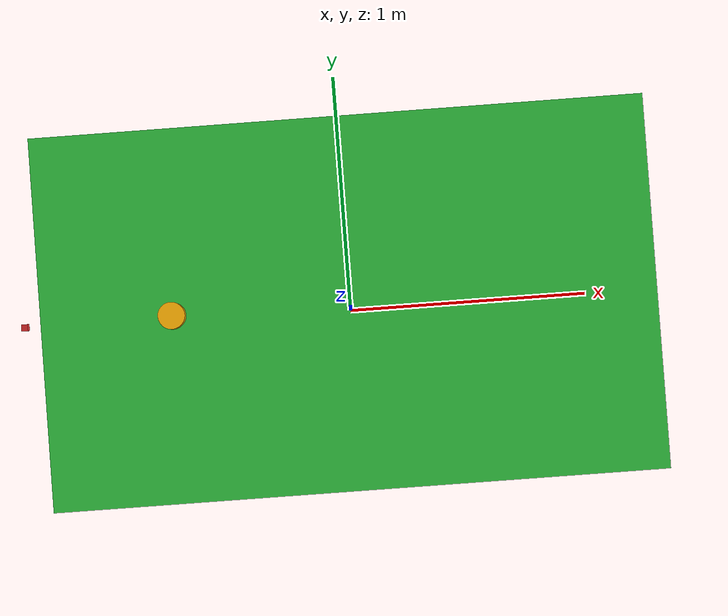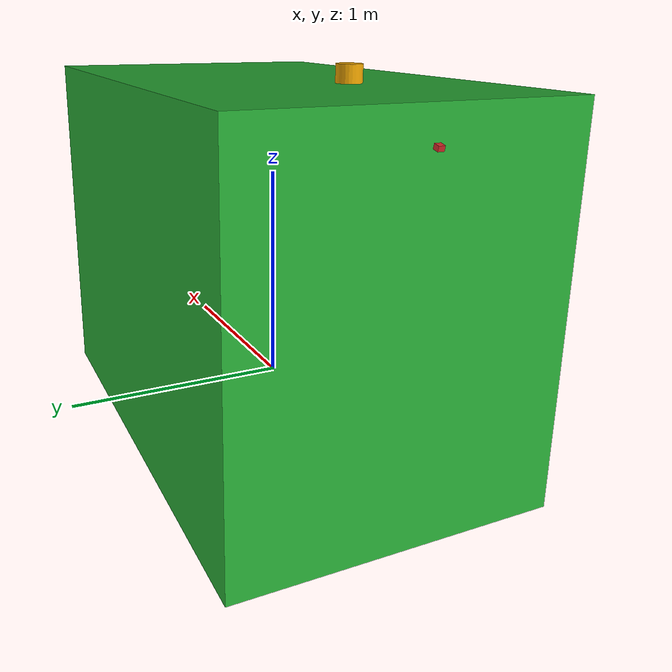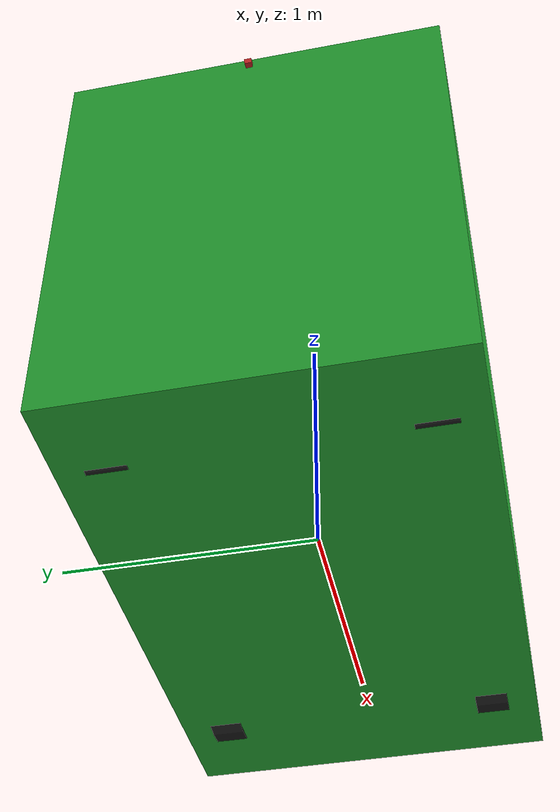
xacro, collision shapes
<?xml version="1.0"?>

<!--
  Copyright (c) 2019 StreetDrone Limited
  Author:  Efimia Panagiotaki

  All rights reserved
-->

<robot name="sd_twizy" xmlns:xacro="http://www.ros.org/wiki/xacro">

    <!-- Imported elements -->
    <xacro:include filename="$(find sd_robot)/urdf/bases/sd_twizy_body.urdf.xacro" />
    <xacro:include filename="$(find sd_robot)/urdf/wheels/sd_twizy_suspension.urdf.xacro" />
    <xacro:include filename="$(find sd_robot)/urdf/sensors/VLP-16.urdf.xacro"/>
    <xacro:include filename="$(find sd_robot)/urdf/sensors/cameras.urdf.xacro"/>

    <!-- Robots Elements -->
    <xacro:sd_twizy_base name="sd_twizy"/>
    <xacro:ros_control/>

    <xacro:RL_wheel/>
    <xacro:RR_wheel/>
    <xacro:FL_wheel/>
    <xacro:FR_wheel/>

    <!-- Sensors -->
    <xacro:VLP-16  parent="base_link" name="velodyne" topic="/points_raw" hz="10" samples="1875">
        <origin xyz="-0.681 0 1.445" rpy="0 -${1.5*M_PI/180.0} 0"/>
    </xacro:VLP-16>

    <xacro:sekonix_camera frlr_prefix="front" lrc_prefix="left">
        <origin xyz="-0.04 0.12 1.3" rpy="0 0.087 0"/>
    </xacro:sekonix_camera>

    <xacro:sekonix_camera frlr_prefix="front" lrc_prefix="right">
        <origin xyz="-0.04 -0.12 1.3" rpy="0 0.087 0"/>
    </xacro:sekonix_camera>

    <xacro:sekonix_camera frlr_prefix="front" lrc_prefix="center">
        <origin xyz="-0.04 0 1.3" rpy="0 0.087 0"/>
    </xacro:sekonix_camera>

    <xacro:sekonix_camera frlr_prefix="rear" lrc_prefix="center">
        <origin xyz="-1.26 0 1.28" rpy="0 0.2618 3.14"/>
    </xacro:sekonix_camera>

    <xacro:sekonix_camera frlr_prefix="right" lrc_prefix="forward">
        <origin xyz="-0.95 -0.42 1.2" rpy="0 0.244 -1.12"/>
    </xacro:sekonix_camera>

    <xacro:sekonix_camera frlr_prefix="right" lrc_prefix="rearward">
        <origin xyz="-1.05 -0.42 1.2" rpy="0 0.244 -2.18"/>
    </xacro:sekonix_camera>

    <xacro:sekonix_camera frlr_prefix="left" lrc_prefix="forward">
        <origin xyz="-0.95 0.4 1.2" rpy="0 0.2967 1.12"/>
    </xacro:sekonix_camera>

    <xacro:sekonix_camera frlr_prefix="left" lrc_prefix="rearward">
        <origin xyz="-1.05 0.39 1.2" rpy="0 0.2967 2.18"/>
    </xacro:sekonix_camera>

</robot>

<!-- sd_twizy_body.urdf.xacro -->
<!--
  Copyright (c) 2019 StreetDrone Limited
  Author:  Efimia Panagiotaki

  All rights reserved
-->

<robot name="sd_twizy" xmlns:xacro="http://www.ros.org/wiki/xacro">

    <xacro:include filename="$(find sd_robot)/urdf/bases/sd_twizy_body.gazebo.xacro" />

    <xacro:macro name="sd_twizy_base" params="name">
        <xacro:property name="depth" value="2.352"/>
        <xacro:property name="height" value="1.7"/>
        <xacro:property name="width" value="1.431"/>
        <xacro:property name="base_mass" value="435"/>
        <xacro:property name="clearance" value="0.582"/>

        <link name="vehicle_base">
            <visual>
                <origin xyz="0 0 0" rpy="0 0 0" />
                <geometry>
                    <box size="0.001 0.001 0.001" />
                </geometry>
            </visual>
        </link>

        <joint name="vehicle_base_joint" type="fixed">
            <origin xyz="0 0 0" rpy="0 0 0"/>
            <parent link="vehicle_base"/>
            <child link="base_link"/>
        </joint>

        <link name="base_link">
            <inertial>
                <mass value="${base_mass}"/>
                <origin xyz="0 0 0"/>
                <inertia ixx="243.175" ixy="0" ixz="0" iyy="430.166" iyz="0" izz="430.166"/>
            </inertial>
            <visual>
                <origin xyz="0 0 0" rpy="0 0 1.57"/>
                <geometry>
                    <mesh filename="file:///$(find sd_robot)/meshes/SDTwizy.stl" scale="0.01 0.01 0.01"/>
		        </geometry>
            </visual>
            <collision>
                <origin xyz="0 0 ${clearance}" rpy="-0.0135 0 1.57"/>
                <geometry>
                    <box size="${width} ${depth} ${height}"/>
                </geometry>
            </collision>
        </link>
    </xacro:macro>

</robot>

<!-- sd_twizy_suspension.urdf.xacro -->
<!--
  Copyright (c) 2019 StreetDrone Limited
  Author:  Efimia Panagiotaki

  All rights reserved
-->

<robot name="wheel" xmlns:xacro="http://www.ros.org/wiki/xacro">

    <xacro:property name = "rear_tyre_radius" value="0.281"/>
    <xacro:property name = "rear_wheel_mass" value="10.08"/>
    <xacro:property name = "rear_tyre_width" value="0.145"/>

    <xacro:property name = "front_tyre_radius" value="0.265"/>
    <xacro:property name = "front_wheel_mass" value="9.14"/>
    <xacro:property name = "front_tyre_width" value="0.125"/>

    <xacro:property name = "friction_dry_mu" value="0.85"/>
    <xacro:property name = "friction_wet_mu" value="0.4"/>

    <xacro:property name = "degrees_90" value="1.57079633"/>
    <xacro:property name = "degrees_180" value="3.14159265"/>

    <xacro:property name = "wheelbase" value="1.686"/>
    <xacro:property name = "track" value="1.08"/>

    <gazebo reference="front_left_wheel">
        <mu1 value="${friction_dry_mu}"/>
        <mu2 value="${friction_dry_mu}"/>
        <minDepth>0.005</minDepth>
        <kp>1e8</kp>
        <material>Gazebo/Black</material>
    </gazebo>

    <gazebo reference="front_right_wheel">
        <mu1 value="${friction_dry_mu}"/>
        <mu2 value="${friction_dry_mu}"/>
        <minDepth>0.005</minDepth>
        <kp>1e8</kp>
        <material>Gazebo/Black</material>
    </gazebo>

    <gazebo reference="rear_left_wheel">
        <mu1 value="${friction_dry_mu}"/>
        <mu2 value="${friction_dry_mu}"/>
        <minDepth>0.005</minDepth>
        <kp>1e8</kp>
        <material>Gazebo/Black</material>
    </gazebo>

    <gazebo reference="rear_right_wheel">
        <mu1 value="${friction_dry_mu}"/>
        <mu2 value="${friction_dry_mu}"/>
        <minDepth>0.005</minDepth>
        <kp>1e8</kp>
        <material>Gazebo/Black</material>
    </gazebo>

    <link name="front_left_axle">
        <inertial>
            <mass value="1"/>
            <origin xyz="0 0 0"/>
            <inertia ixx="0.004" ixy="0.0" ixz="0.0" iyy="0.004" iyz="0.0" izz="0.004"/>
        </inertial>
    </link>

    <link name="front_right_axle">
        <inertial>
            <mass value="1"/>
            <origin xyz="0 0 0"/>
            <inertia ixx="0.004" ixy="0.0" ixz="0.0" iyy="0.004" iyz="0.0" izz="0.004"/>
        </inertial>
    </link>

    <link name="front_left_wheel">
        <inertial>
            <mass value="${front_wheel_mass}"/>
            <origin xyz="0 0 0"/>
            <inertia ixx="${(1 / 12)*front_wheel_mass*(3*(front_tyre_radius*front_tyre_radius)+ front_tyre_width * front_tyre_width)}" ixy="0.0" ixz="0.0"
                     iyy="${(1 / 12)*front_wheel_mass*(3*(front_tyre_radius*front_tyre_radius)+ front_tyre_width * front_tyre_width)}" iyz="0.0"
                     izz="${(1/2)*front_wheel_mass*front_tyre_radius*front_tyre_radius}"/>
        </inertial>
        <collision name="front_left_wheel_collision">
            <geometry>
                <cylinder radius="${front_tyre_radius}" length="${front_tyre_width}"/>
            </geometry>
        </collision>
        <visual>
            <geometry>
                <cylinder radius="${front_tyre_radius}" length="${front_tyre_width}"/>
            </geometry>
            <material name="tire_mat"/>
        </visual>
    </link>

    <link name="front_right_wheel">
        <inertial>
            <mass value="${front_wheel_mass}"/>
            <origin xyz="0 0 0"/>
            <inertia ixx="${(1 / 12)*front_wheel_mass*(3*(front_tyre_radius*front_tyre_radius)+ front_tyre_width * front_tyre_width)}" ixy="0.0" ixz="0.0"
                     iyy="${(1 / 12)*front_wheel_mass*(3*(front_tyre_radius*front_tyre_radius)+ front_tyre_width * front_tyre_width)}" iyz="0.0"
                     izz="${(1/2)*front_wheel_mass*front_tyre_radius*front_tyre_radius}"/>
        </inertial>
        <collision name="front_right_wheel_collision">
            <geometry>
                <cylinder radius="${front_tyre_radius}" length="${front_tyre_width}"/>
            </geometry>
        </collision>
        <visual>
            <geometry>
                <cylinder radius="${front_tyre_radius}" length="${front_tyre_width}"/>
            </geometry>
            <material name="tire_mat"/>
        </visual>
    </link>

    <link name="rear_left_wheel">
        <inertial>
            <mass value="${rear_wheel_mass}"/>
            <origin xyz="0 0 0"/>
            <inertia ixx="${(1 / 12)*rear_wheel_mass*(3*(rear_tyre_radius*rear_tyre_radius)+ rear_tyre_width * rear_tyre_width)}" ixy="0.0" ixz="0.0"
                     iyy="${(1 / 12)*rear_wheel_mass*(3*(rear_tyre_radius*rear_tyre_radius)+ rear_tyre_width * rear_tyre_width)}" iyz="0.0"
                     izz="${(1/2)*rear_wheel_mass*rear_tyre_radius*rear_tyre_radius}"/>
        </inertial>
        <collision name="rear_left_wheel_collision">
            <geometry>
                <cylinder radius="${rear_tyre_radius}" length="${rear_tyre_width}"/>
            </geometry>
        </collision>
        <visual>
            <geometry>
                <cylinder radius="${rear_tyre_radius}" length="${rear_tyre_width}"/>
            </geometry>
            <material name="tire_mat"/>
        </visual>
    </link>

    <link name="rear_right_wheel">
        <inertial>
            <mass value="${rear_wheel_mass}"/>
            <origin xyz="0 0 0"/>
            <inertia ixx="${(1 / 12)*rear_wheel_mass*(3*(rear_tyre_radius*rear_tyre_radius)+ rear_tyre_width * rear_tyre_width)}" ixy="0.0" ixz="0.0"
                     iyy="${(1 / 12)*rear_wheel_mass*(3*(rear_tyre_radius*rear_tyre_radius)+ rear_tyre_width * rear_tyre_width)}" iyz="0.0"
                     izz="${(1/2)*rear_wheel_mass*rear_tyre_radius*rear_tyre_radius}"/>
        </inertial>
        <collision name="rear_right_wheel_collision">
            <geometry>
                <cylinder radius="${rear_tyre_radius}" length="${rear_tyre_width}"/>
            </geometry>
        </collision>
        <visual>
            <geometry>
                <cylinder radius="${rear_tyre_radius}" length="${rear_tyre_width}"/>
            </geometry>
            <material name="tire_mat"/>
        </visual>
    </link>

    <xacro:macro name="FL_wheel">
        <joint name="front_left_steer_joint" type="revolute">
            <parent link="base_link"/>
            <child link="front_left_axle"/>
            <origin xyz="${wheelbase / 2} ${-(track / 2)} 0" rpy="${degrees_90} 0 ${degrees_180}"/>
            <axis xyz="0 1 0"/>
            <limit lower="-0.785398" upper="0.785398" effort="500000" velocity="250"/>
        </joint>

        <joint name="front_left_wheel_joint" type="continuous">
            <parent link="front_left_axle"/>
            <child link="front_left_wheel"/>
            <origin xyz="0 0 0" rpy="0 0 0"/>
            <axis xyz="0 0 -1"/>
        </joint>

        <transmission name="front_left_steer_joint_trans">
            <type>transmission_interface/SimpleTransmission</type>
            <joint name="front_left_steer_joint">
                <hardwareInterface>hardware_interface/EffortJointInterface</hardwareInterface>
            </joint>
            <actuator name="front_left_steer_joint_act">
                <mechanicalReduction>1</mechanicalReduction>
            </actuator>
        </transmission>

        <transmission name="front_left_rear_axle_trans">
            <type>transmission_interface/SimpleTransmission</type>
            <joint name="front_left_wheel_joint">
                <hardwareInterface>hardware_interface/VelocityJointInterface</hardwareInterface>
            </joint>
            <actuator name="front_left_rear_axle_act">
                <mechanicalReduction>1</mechanicalReduction>
            </actuator>
        </transmission>
    </xacro:macro>

    <xacro:macro name="FR_wheel">
        <joint name="front_right_steer_joint" type="revolute">
            <parent link="base_link"/>
            <child link="front_right_axle"/>
            <origin xyz="${wheelbase / 2} ${(track / 2)} 0" rpy="${degrees_90} 0 ${degrees_180}"/>
            <axis xyz="0 1 0"/>
            <limit lower="-0.785398" upper="0.785398" effort="500000" velocity="250"/>
        </joint>

        <joint name="front_right_wheel_joint" type="continuous">
            <parent link="front_right_axle"/>
            <child link="front_right_wheel"/>
            <origin xyz="0 0 0" rpy="0 0 0"/>
            <axis xyz="0 0 -1"/>
        </joint>

        <transmission name="front_right_steer_joint_trans">
            <type>transmission_interface/SimpleTransmission</type>
            <joint name="front_right_steer_joint">
                <hardwareInterface>hardware_interface/EffortJointInterface</hardwareInterface>
            </joint>
            <actuator name="front_right_steer_joint_act">
                <mechanicalReduction>1</mechanicalReduction>
            </actuator>
        </transmission>

        <transmission name="front_right_rear_axle_trans">
            <type>transmission_interface/SimpleTransmission</type>
            <joint name="front_right_wheel_joint">
                <hardwareInterface>hardware_interface/VelocityJointInterface</hardwareInterface>
            </joint>
            <actuator name="front_right_rear_axle_act">
                <mechanicalReduction>1</mechanicalReduction>
            </actuator>
        </transmission>
    </xacro:macro>

    <xacro:macro name="RL_wheel">
        <joint name="rear_left_wheel_joint" type="continuous">
            <parent link="base_link"/>
            <child link="rear_left_wheel"/>
            <origin xyz="${-wheelbase / 2} ${-(track / 2)} 0" rpy="${degrees_90} 0 ${degrees_180}"/>
            <axis xyz="0 0 -1"/>
        </joint>

        <transmission name="rear_left_rear_axle_trans">
            <type>transmission_interface/SimpleTransmission</type>
            <joint name="rear_left_wheel_joint">
                <hardwareInterface>hardware_interface/VelocityJointInterface</hardwareInterface>
            </joint>
            <actuator name="rear_left_rear_axle_act">
                <mechanicalReduction>1</mechanicalReduction>
            </actuator>
        </transmission>
    </xacro:macro>

    <xacro:macro name="RR_wheel">
        <joint name="rear_right_wheel_joint" type="continuous">
            <parent link="base_link"/>
            <child link="rear_right_wheel"/>
            <origin xyz="${-wheelbase / 2} ${(track / 2)} 0" rpy="${degrees_90} 0 ${degrees_180}"/>
            <axis xyz="0 0 -1"/>
        </joint>

        <transmission name="rear_right_rear_axle_trans">
            <type>transmission_interface/SimpleTransmission</type>
            <joint name="rear_right_wheel_joint">
                <hardwareInterface>hardware_interface/VelocityJointInterface</hardwareInterface>
            </joint>
            <actuator name="rear_right_rear_axle_act">
                <mechanicalReduction>1</mechanicalReduction>
            </actuator>
        </transmission>
    </xacro:macro>

</robot>

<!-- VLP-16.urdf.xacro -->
<robot xmlns:xacro="http://www.ros.org/wiki/xacro" name="VLP-16">
    <xacro:property name="M_PI" value="3.1415926535897931" />

    <xacro:macro name="VLP-16" params="*origin parent:=base_link name:=velodyne topic:=/points_raw hz:=10 lasers:=16 samples:=1875 collision_range:=0.3 min_range:=0.9 max_range:=130.0 noise:=0.008 min_angle:=-${M_PI} max_angle:=${M_PI} gpu:=false">

        <joint name="${name}_base_mount_joint" type="fixed">
            <xacro:insert_block name="origin" />
            <parent link="${parent}"/>
            <child link="${name}_base_link"/>
        </joint>

        <link name="${name}_base_link">
            <inertial>
                <mass value="0.83"/>
                <origin xyz="0 0 0.03585"/>
                <inertia ixx="${(0.83 * (3.0*0.0516*0.0516 + 0.0717*0.0717)) / 12.0}" ixy="0" ixz="0"
                         iyy="${(0.83 * (3.0*0.0516*0.0516 + 0.0717*0.0717)) / 12.0}" iyz="0"
                         izz="${0.5 * 0.83 * (0.0516*0.0516)}"/>
            </inertial>
            <visual>
                <geometry>
                    <mesh filename="file:///$(find sd_robot)/meshes/VLP16_base_1.dae" />
                </geometry>
            </visual>
            <visual>
                <geometry>
                    <mesh filename="file:///$(find sd_robot)/meshes/VLP16_base_2.dae" />
                </geometry>
            </visual>
            <collision>
                <origin rpy="0 0 0" xyz="0 0 0.03585"/>
                <geometry>
                    <cylinder radius="0.0516" length="0.0717"/>
                </geometry>
            </collision>
        </link>

        <joint name="${name}_base_scan_joint" type="fixed" >
            <origin xyz="0 0 0.0377" rpy="0 0 0" />
            <parent link="${name}_base_link" />
            <child link="${name}"/>
        </joint>

        <link name="${name}">
            <inertial>
                <mass value="0.01"/>
                <origin xyz="0 0 0"/>
                <inertia ixx="1e-7" ixy="0" ixz="0" iyy="1e-7" iyz="0" izz="1e-7"/>
            </inertial>
            <visual>
                <origin xyz="0 0 -0.0377" />
                <geometry>
                    <mesh filename="file:///$(find sd_robot)/meshes/VLP16_scan.dae" />
                </geometry>
            </visual>
        </link>

        <!-- Gazebo requires the velodyne_gazebo_plugins package -->
        <gazebo reference="${name}">
            <sensor type="ray" name="${name}-VLP16">
                <pose>0 0 0 0 0 0</pose>
                <visualize>false</visualize>
                <update_rate>${hz}</update_rate>
                <ray>
                    <scan>
                        <horizontal>
                            <samples>${samples}</samples>
                            <resolution>1</resolution>
                            <min_angle>${min_angle}</min_angle>
                            <max_angle>${max_angle}</max_angle>
                        </horizontal>
                        <vertical>
                            <samples>${lasers}</samples>
                            <resolution>1</resolution>
                            <min_angle>-${15.0*M_PI/180.0}</min_angle>
                            <max_angle> ${15.0*M_PI/180.0}</max_angle>
                        </vertical>
                    </scan>
                    <range>
                        <min>${collision_range}</min>
                        <max>${max_range+1}</max>
                        <resolution>0.001</resolution>
                    </range>
                    <noise>
                        <type>gaussian</type>
                        <mean>0.0</mean>
                        <stddev>0.0</stddev>
                    </noise>
                </ray>
                <plugin name="gazebo_ros_laser_controller" filename="libgazebo_ros_velodyne_laser.so">
                    <topicName>${topic}</topicName>
                    <frameName>${name}</frameName>
                    <min_range>${min_range}</min_range>
                    <max_range>${max_range}</max_range>
                    <gaussianNoise>${noise}</gaussianNoise>
                </plugin>
            </sensor>
        </gazebo>

    </xacro:macro>
</robot>

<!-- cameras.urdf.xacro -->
<!--
  Copyright (c) 2019 StreetDrone Limited
  Author:  Efimia Panagiotaki

  All rights reserved
-->

<robot xmlns:xacro="http://www.ros.org/wiki/xacro" name="sekonix_camera">
    <xacro:macro name="sekonix_camera" params="frlr_prefix lrc_prefix *origin">

        <joint name="${frlr_prefix}_${lrc_prefix}_camera_joint" type="fixed">
            <axis xyz="0 1 0" />
            <xacro:insert_block name="origin"/>
            <parent link="base_link"/>
            <child link="${frlr_prefix}_${lrc_prefix}_camera_link"/>
        </joint>

        <!-- Camera -->
        <link name="${frlr_prefix}_${lrc_prefix}_camera_link">
            <collision>
                <origin xyz="0 0 0" rpy="0 0 0"/>
                <geometry>
                    <box size="0.026 0.026 0.0203"/>
                </geometry>
            </collision>

            <visual>
                <origin xyz="0 0 0" rpy="0 0 0"/>
                <geometry>
                    <box size="0.026 0.026 0.0203"/>
                </geometry>
                <material name="red"/>
            </visual>

            <inertial>
                <mass value="1e-5" />
                <origin xyz="0 0 0" rpy="0 0 0"/>
                <inertia ixx="1e-6" ixy="0" ixz="0" iyy="1e-6" iyz="0" izz="1e-6" />
            </inertial>
        </link>

        <!-- generate an optical frame http://www.ros.org/reps/rep-0103.html#suffix-frames
            so that ros and opencv can operate on the camera frame correctly -->
        <joint name="${frlr_prefix}_${lrc_prefix}_camera_optical_joint" type="fixed">
            <!-- these values have to be these values otherwise the gazebo camera image
                won't be aligned properly with the frame it is supposedly originating from -->
            <origin xyz="0 0 0" rpy="${-pi/2} 0 ${-pi/2}"/>
            <parent link="${frlr_prefix}_${lrc_prefix}_camera_link"/>
            <child link="${frlr_prefix}_${lrc_prefix}_camera_link_optical"/>
        </joint>

        <link name="${frlr_prefix}_${lrc_prefix}_camera_link_optical"/>

        <gazebo reference="${frlr_prefix}_${lrc_prefix}_camera_link">
            <mu1>0.2</mu1>
            <mu2>0.2</mu2>
            <material>Gazebo/Red</material>
            <sensor type="camera" name="${frlr_prefix}_${lrc_prefix}_camera">
                <update_rate>30.0</update_rate>
                <camera name="head">
                    <horizontal_fov>2.09</horizontal_fov>
                    <image>
                        <width>1928</width>
                        <height>1208</height>
                        <format>R8G8B8</format>
                    </image>
                    <clip>
                        <near>0.1</near>
                        <far>30</far>
                    </clip>
                    <noise>
                        <type>gaussian</type>
                        <mean>0.0</mean>
                        <stddev>0.007</stddev>
                    </noise>
                </camera>
                <plugin name="${frlr_prefix}_${lrc_prefix}_camera_controller" filename="libgazebo_ros_camera.so">
                    <alwaysOn>true</alwaysOn>
                    <updateRate>0.0</updateRate>
                    <cameraName>sd_twizy/${frlr_prefix}_${lrc_prefix}_camera</cameraName>
                    <imageTopicName>image_raw</imageTopicName>
                    <cameraInfoTopicName>camera_info</cameraInfoTopicName>
                    <frameName>${frlr_prefix}_${lrc_prefix}_camera_link_optical</frameName>
                    <!-- setting hackBaseline to anything but 0.0 will cause a misalignment
                        between the gazebo sensor image and the frame it is supposed to
                        be attached to -->
                    <hackBaseline>0.0</hackBaseline>
                    <distortionK1>0.0</distortionK1>
                    <distortionK2>0.0</distortionK2>
                    <distortionK3>0.0</distortionK3>
                    <distortionT1>0.0</distortionT1>
                    <distortionT2>0.0</distortionT2>
                    <CxPrime>0</CxPrime>
                    <Cx>0.0</Cx>
                    <Cy>0.0</Cy>
                    <focalLength>0.0</focalLength>
                </plugin>
            </sensor>
        </gazebo>

    </xacro:macro>
</robot>
